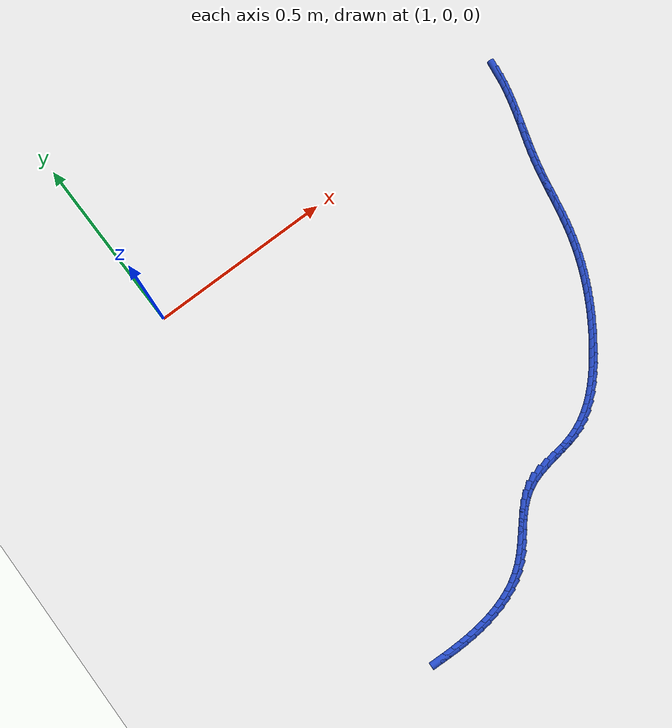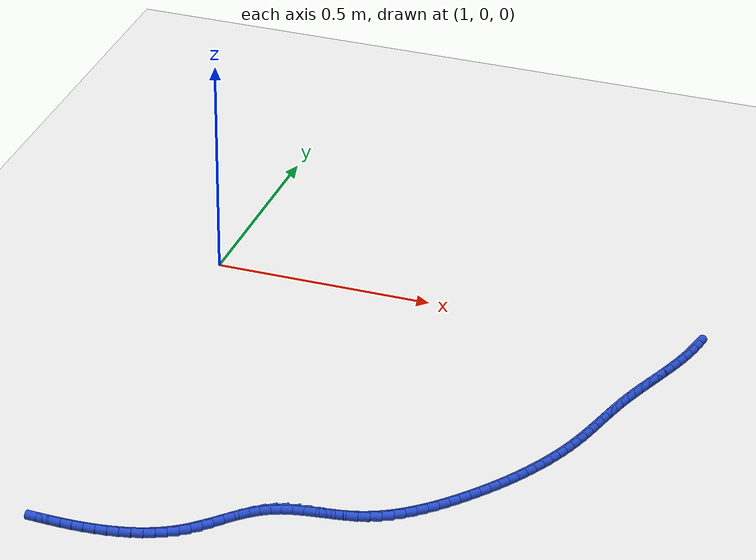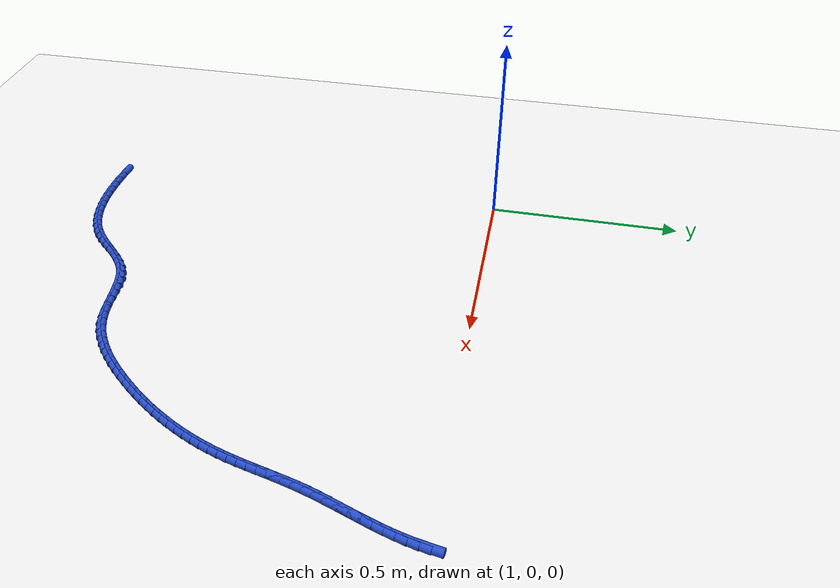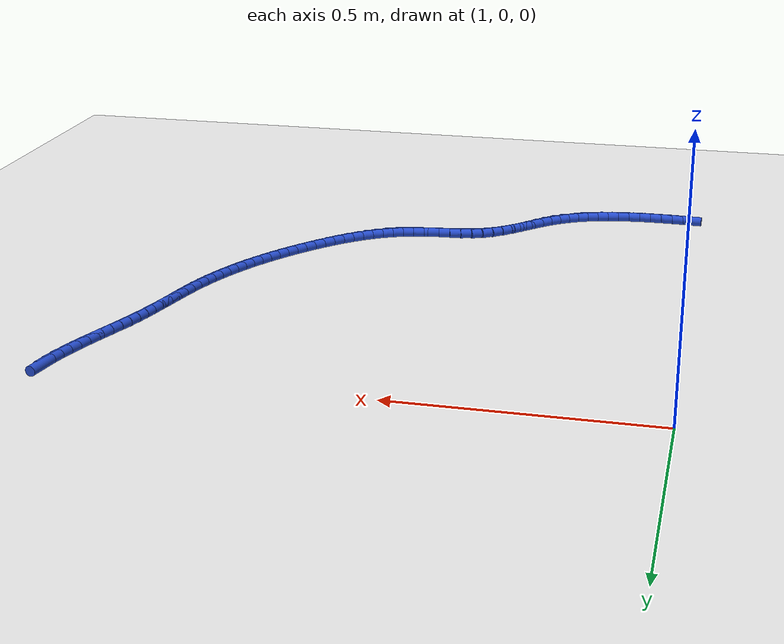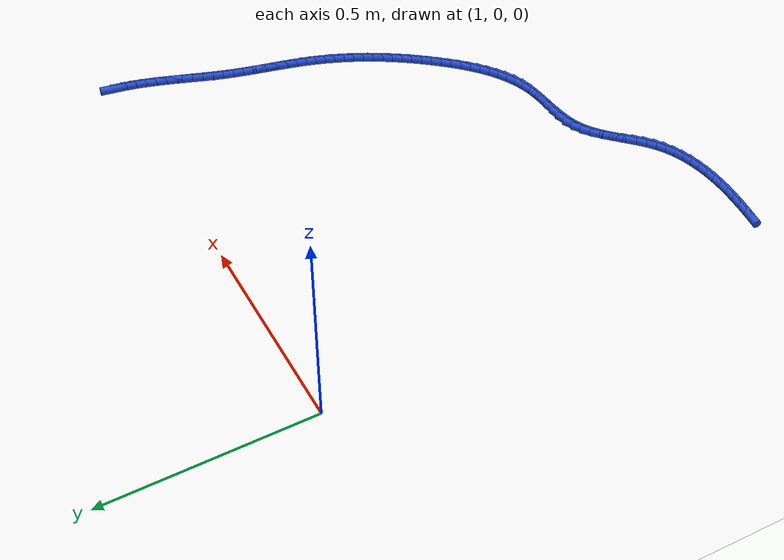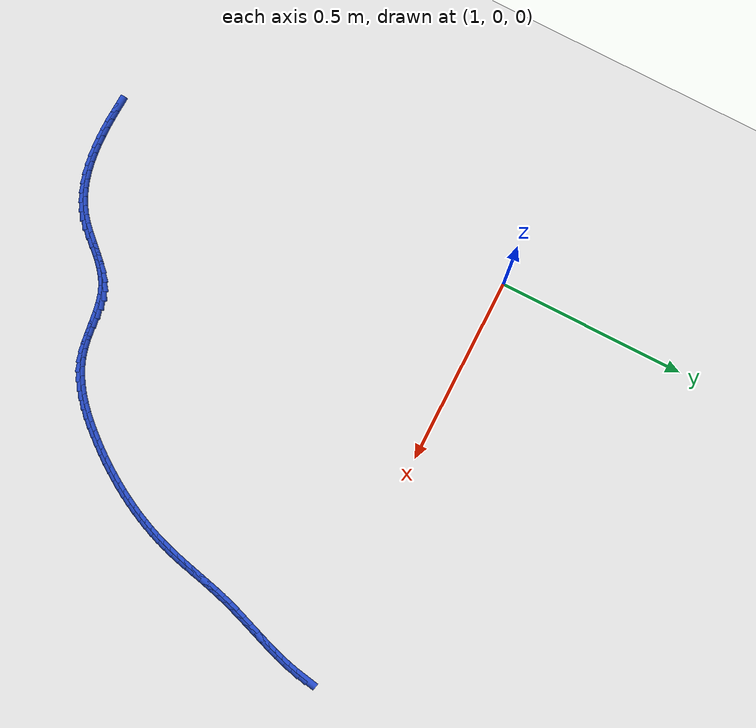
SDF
<sdf version="1.6">
 <world name="default">
  <model name="ground_plane">
   <static>1</static>
   <link name="link">
    <collision name="collision">
     <geometry><plane><normal>0 0 1</normal><size>100 100</size></plane></geometry>
     <surface><friction><ode><mu>100</mu><mu2>50</mu2></ode></friction></surface>
    </collision>
    <visual name="visual">
     <cast_shadows>0</cast_shadows>
     <geometry><plane><normal>0 0 1</normal><size>100 100</size></plane></geometry>
     <material>
      <script><uri>file://media/materials/scripts/gazebo.material</uri><name>Gazebo/WhiteGlow</name></script>
     </material>
    </visual>
   </link>
  </model>
  <model name="line">
   <link name="link_140">
    <pose>2.1119789905727155 -0.00016932685512074507 0.01 0 1.57 1.3908971001475434</pose>
    <collision name="collision">
     <geometry><cylinder><radius>0.01</radius><length>0.08</length></cylinder></geometry>
    </collision>
    <visual name="visual">
     <material>
      <script><name>Gazebo/Blue</name><uri>file://media/materials/scripts/gazebo.material</uri></script>
     </material>
     <geometry><cylinder><radius>0.01</radius><length>0.08</length></cylinder></geometry>
    </visual>
   </link>
   <link name="link_141">
    <pose>2.1077597652340416 -0.023369038611728836 0.01 0 1.57 1.3421493708460157</pose>
    <collision name="collision">
     <geometry><cylinder><radius>0.01</radius><length>0.08</length></cylinder></geometry>
    </collision>
    <visual name="visual">
     <material>
      <script><name>Gazebo/Blue</name><uri>file://media/materials/scripts/gazebo.material</uri></script>
     </material>
     <geometry><cylinder><radius>0.01</radius><length>0.08</length></cylinder></geometry>
    </visual>
   </link>
   <link name="link_142">
    <pose>2.102318090108886 -0.04675230962630946 0.01 0 1.57 1.302776358521491</pose>
    <collision name="collision">
     <geometry><cylinder><radius>0.01</radius><length>0.08</length></cylinder></geometry>
    </collision>
    <visual name="visual">
     <material>
      <script><name>Gazebo/Blue</name><uri>file://media/materials/scripts/gazebo.material</uri></script>
     </material>
     <geometry><cylinder><radius>0.01</radius><length>0.08</length></cylinder></geometry>
    </visual>
   </link>
   <link name="link_143">
    <pose>2.0958546328938366 -0.07028766085025737 0.01 0 1.57 1.2720727766157587</pose>
    <collision name="collision">
     <geometry><cylinder><radius>0.01</radius><length>0.08</length></cylinder></geometry>
    </collision>
    <visual name="visual">
     <material>
      <script><name>Gazebo/Blue</name><uri>file://media/materials/scripts/gazebo.material</uri></script>
     </material>
     <geometry><cylinder><radius>0.01</radius><length>0.08</length></cylinder></geometry>
    </visual>
   </link>
   <link name="link_144">
    <pose>2.0885700612854805 -0.09394361323496742 0.01 0 1.57 1.2494250937084275</pose>
    <collision name="collision">
     <geometry><cylinder><radius>0.01</radius><length>0.08</length></cylinder></geometry>
    </collision>
    <visual name="visual">
     <material>
      <script><name>Gazebo/Blue</name><uri>file://media/materials/scripts/gazebo.material</uri></script>
     </material>
     <geometry><cylinder><radius>0.01</radius><length>0.08</length></cylinder></geometry>
    </visual>
   </link>
   <link name="link_145">
    <pose>2.0806650429804066 -0.11768868773183441 0.01 0 1.57 1.2343518468855021</pose>
    <collision name="collision">
     <geometry><cylinder><radius>0.01</radius><length>0.08</length></cylinder></geometry>
    </collision>
    <visual name="visual">
     <material>
      <script><name>Gazebo/Blue</name><uri>file://media/materials/scripts/gazebo.material</uri></script>
     </material>
     <geometry><cylinder><radius>0.01</radius><length>0.08</length></cylinder></geometry>
    </visual>
   </link>
   <link name="link_146">
    <pose>2.0723402456752016 -0.14149140529225393 0.01 0 1.57 1.22652263205509</pose>
    <collision name="collision">
     <geometry><cylinder><radius>0.01</radius><length>0.08</length></cylinder></geometry>
    </collision>
    <visual name="visual">
     <material>
      <script><name>Gazebo/Blue</name><uri>file://media/materials/scripts/gazebo.material</uri></script>
     </material>
     <geometry><cylinder><radius>0.01</radius><length>0.08</length></cylinder></geometry>
    </visual>
   </link>
   <link name="link_147">
    <pose>2.063796337066454 -0.1653202868676192 0.01 0 1.57 1.2257659722225072</pose>
    <collision name="collision">
     <geometry><cylinder><radius>0.01</radius><length>0.08</length></cylinder></geometry>
    </collision>
    <visual name="visual">
     <material>
      <script><name>Gazebo/Blue</name><uri>file://media/materials/scripts/gazebo.material</uri></script>
     </material>
     <geometry><cylinder><radius>0.01</radius><length>0.08</length></cylinder></geometry>
    </visual>
   </link>
   <link name="link_148">
    <pose>2.055233984850752 -0.18914385340932582 0.01 0 1.57 1.2320721787025977</pose>
    <collision name="collision">
     <geometry><cylinder><radius>0.01</radius><length>0.08</length></cylinder></geometry>
    </collision>
    <visual name="visual">
     <material>
      <script><name>Gazebo/Blue</name><uri>file://media/materials/scripts/gazebo.material</uri></script>
     </material>
     <geometry><cylinder><radius>0.01</radius><length>0.08</length></cylinder></geometry>
    </visual>
   </link>
   <link name="link_149">
    <pose>2.046853856724683 -0.2129306258687687 0.01 0 1.57 1.2455941088734253</pose>
    <collision name="collision">
     <geometry><cylinder><radius>0.01</radius><length>0.08</length></cylinder></geometry>
    </collision>
    <visual name="visual">
     <material>
      <script><name>Gazebo/Blue</name><uri>file://media/materials/scripts/gazebo.material</uri></script>
     </material>
     <geometry><cylinder><radius>0.01</radius><length>0.08</length></cylinder></geometry>
    </visual>
   </link>
   <link name="link_150">
    <pose>2.0388566203848355 -0.2366491251973426 0.01 0 1.57 1.2666315027740807</pose>
    <collision name="collision">
     <geometry><cylinder><radius>0.01</radius><length>0.08</length></cylinder></geometry>
    </collision>
    <visual name="visual">
     <material>
      <script><name>Gazebo/Blue</name><uri>file://media/materials/scripts/gazebo.material</uri></script>
     </material>
     <geometry><cylinder><radius>0.01</radius><length>0.08</length></cylinder></geometry>
    </visual>
   </link>
   <link name="link_151">
    <pose>2.031442557309021 -0.2602678981682472 0.01 0 1.57 1.2917681304477877</pose>
    <collision name="collision">
     <geometry><cylinder><radius>0.01</radius><length>0.08</length></cylinder></geometry>
    </collision>
    <visual name="visual">
     <material>
      <script><name>Gazebo/Blue</name><uri>file://media/materials/scripts/gazebo.material</uri></script>
     </material>
     <geometry><cylinder><radius>0.01</radius><length>0.08</length></cylinder></geometry>
    </visual>
   </link>
   <link name="link_152">
    <pose>2.0247113775892513 -0.28376221555380204 0.01 0 1.57 1.312057740039612</pose>
    <collision name="collision">
     <geometry><cylinder><radius>0.01</radius><length>0.08</length></cylinder></geometry>
    </collision>
    <visual name="visual">
     <material>
      <script><name>Gazebo/Blue</name><uri>file://media/materials/scripts/gazebo.material</uri></script>
     </material>
     <geometry><cylinder><radius>0.01</radius><length>0.08</length></cylinder></geometry>
    </visual>
   </link>
   <link name="link_153">
    <pose>2.018528443809461 -0.3071230161259819 0.01 0 1.57 1.3259179890098105</pose>
    <collision name="collision">
     <geometry><cylinder><radius>0.01</radius><length>0.08</length></cylinder></geometry>
    </collision>
    <visual name="visual">
     <material>
      <script><name>Gazebo/Blue</name><uri>file://media/materials/scripts/gazebo.material</uri></script>
     </material>
     <geometry><cylinder><radius>0.01</radius><length>0.08</length></cylinder></geometry>
    </visual>
   </link>
   <link name="link_154">
    <pose>2.0127258065204567 -0.33034346583181357 0.01 0 1.57 1.3330925601519714</pose>
    <collision name="collision">
     <geometry><cylinder><radius>0.01</radius><length>0.08</length></cylinder></geometry>
    </collision>
    <visual name="visual">
     <material>
      <script><name>Gazebo/Blue</name><uri>file://media/materials/scripts/gazebo.material</uri></script>
     </material>
     <geometry><cylinder><radius>0.01</radius><length>0.08</length></cylinder></geometry>
    </visual>
   </link>
   <link name="link_155">
    <pose>2.007135516273047 -0.3534167306183246 0.01 0 1.57 1.3333844132287938</pose>
    <collision name="collision">
     <geometry><cylinder><radius>0.01</radius><length>0.08</length></cylinder></geometry>
    </collision>
    <visual name="visual">
     <material>
      <script><name>Gazebo/Blue</name><uri>file://media/materials/scripts/gazebo.material</uri></script>
     </material>
     <geometry><cylinder><radius>0.01</radius><length>0.08</length></cylinder></geometry>
    </visual>
   </link>
   <link name="link_156">
    <pose>2.00158962361804 -0.3763359764325405 0.01 0 1.57 1.3266512956134764</pose>
    <collision name="collision">
     <geometry><cylinder><radius>0.01</radius><length>0.08</length></cylinder></geometry>
    </collision>
    <visual name="visual">
     <material>
      <script><name>Gazebo/Blue</name><uri>file://media/materials/scripts/gazebo.material</uri></script>
     </material>
     <geometry><cylinder><radius>0.01</radius><length>0.08</length></cylinder></geometry>
    </visual>
   </link>
   <link name="link_157">
    <pose>1.9959201791062418 -0.3990943692214887 0.01 0 1.57 1.3128093802815755</pose>
    <collision name="collision">
     <geometry><cylinder><radius>0.01</radius><length>0.08</length></cylinder></geometry>
    </collision>
    <visual name="visual">
     <material>
      <script><name>Gazebo/Blue</name><uri>file://media/materials/scripts/gazebo.material</uri></script>
     </material>
     <geometry><cylinder><radius>0.01</radius><length>0.08</length></cylinder></geometry>
    </visual>
   </link>
   <link name="link_158">
    <pose>1.9899592332884628 -0.42168507493219626 0.01 0 1.57 1.291846274981923</pose>
    <collision name="collision">
     <geometry><cylinder><radius>0.01</radius><length>0.08</length></cylinder></geometry>
    </collision>
    <visual name="visual">
     <material>
      <script><name>Gazebo/Blue</name><uri>file://media/materials/scripts/gazebo.material</uri></script>
     </material>
     <geometry><cylinder><radius>0.01</radius><length>0.08</length></cylinder></geometry>
    </visual>
   </link>
   <link name="link_159">
    <pose>1.9835388367155091 -0.4441012595116898 0.01 0 1.57 1.2638950569775589</pose>
    <collision name="collision">
     <geometry><cylinder><radius>0.01</radius><length>0.08</length></cylinder></geometry>
    </collision>
    <visual name="visual">
     <material>
      <script><name>Gazebo/Blue</name><uri>file://media/materials/scripts/gazebo.material</uri></script>
     </material>
     <geometry><cylinder><radius>0.01</radius><length>0.08</length></cylinder></geometry>
    </visual>
   </link>
   <link name="link_160">
    <pose>1.9764923103053098 -0.46633606812106954 0.01 0 1.57 1.2319318706358269</pose>
    <collision name="collision">
     <geometry><cylinder><radius>0.01</radius><length>0.08</length></cylinder></geometry>
    </collision>
    <visual name="visual">
     <material>
      <script><name>Gazebo/Blue</name><uri>file://media/materials/scripts/gazebo.material</uri></script>
     </material>
     <geometry><cylinder><radius>0.01</radius><length>0.08</length></cylinder></geometry>
    </visual>
   </link>
   <link name="link_161">
    <pose>1.9687221779599413 -0.48838151361240284 0.01 0 1.57 1.2002240146071206</pose>
    <collision name="collision">
     <geometry><cylinder><radius>0.01</radius><length>0.08</length></cylinder></geometry>
    </collision>
    <visual name="visual">
     <material>
      <script><name>Gazebo/Blue</name><uri>file://media/materials/scripts/gazebo.material</uri></script>
     </material>
     <geometry><cylinder><radius>0.01</radius><length>0.08</length></cylinder></geometry>
    </visual>
   </link>
   <link name="link_162">
    <pose>1.9602343758756107 -0.5102279167911475 0.01 0 1.57 1.169116741217761</pose>
    <collision name="collision">
     <geometry><cylinder><radius>0.01</radius><length>0.08</length></cylinder></geometry>
    </collision>
    <visual name="visual">
     <material>
      <script><name>Gazebo/Blue</name><uri>file://media/materials/scripts/gazebo.material</uri></script>
     </material>
     <geometry><cylinder><radius>0.01</radius><length>0.08</length></cylinder></geometry>
    </visual>
   </link>
   <link name="link_163">
    <pose>1.9510433004331285 -0.531865460036022 0.01 0 1.57 1.1386071097745334</pose>
    <collision name="collision">
     <geometry><cylinder><radius>0.01</radius><length>0.08</length></cylinder></geometry>
    </collision>
    <visual name="visual">
     <material>
      <script><name>Gazebo/Blue</name><uri>file://media/materials/scripts/gazebo.material</uri></script>
     </material>
     <geometry><cylinder><radius>0.01</radius><length>0.08</length></cylinder></geometry>
    </visual>
   </link>
   <link name="link_164">
    <pose>1.9411633480133057 -0.5532843257257455 0.01 0 1.57 1.1086884202255078</pose>
    <collision name="collision">
     <geometry><cylinder><radius>0.01</radius><length>0.08</length></cylinder></geometry>
    </collision>
    <visual name="visual">
     <material>
      <script><name>Gazebo/Blue</name><uri>file://media/materials/scripts/gazebo.material</uri></script>
     </material>
     <geometry><cylinder><radius>0.01</radius><length>0.08</length></cylinder></geometry>
    </visual>
   </link>
   <link name="link_165">
    <pose>1.9306089149969552 -0.574474696239035 0.01 0 1.57 1.0793506322932012</pose>
    <collision name="collision">
     <geometry><cylinder><radius>0.01</radius><length>0.08</length></cylinder></geometry>
    </collision>
    <visual name="visual">
     <material>
      <script><name>Gazebo/Blue</name><uri>file://media/materials/scripts/gazebo.material</uri></script>
     </material>
     <geometry><cylinder><radius>0.01</radius><length>0.08</length></cylinder></geometry>
    </visual>
   </link>
   <link name="link_166">
    <pose>1.919394397764887 -0.5954267539546099 0.01 0 1.57 1.0505807733946966</pose>
    <collision name="collision">
     <geometry><cylinder><radius>0.01</radius><length>0.08</length></cylinder></geometry>
    </collision>
    <visual name="visual">
     <material>
      <script><name>Gazebo/Blue</name><uri>file://media/materials/scripts/gazebo.material</uri></script>
     </material>
     <geometry><cylinder><radius>0.01</radius><length>0.08</length></cylinder></geometry>
    </visual>
   </link>
   <link name="link_167">
    <pose>1.9075341926979126 -0.6161306812511883 0.01 0 1.57 1.0223633281270752</pose>
    <collision name="collision">
     <geometry><cylinder><radius>0.01</radius><length>0.08</length></cylinder></geometry>
    </collision>
    <visual name="visual">
     <material>
      <script><name>Gazebo/Blue</name><uri>file://media/materials/scripts/gazebo.material</uri></script>
     </material>
     <geometry><cylinder><radius>0.01</radius><length>0.08</length></cylinder></geometry>
    </visual>
   </link>
   <link name="link_168">
    <pose>1.8950426961768432 -0.636576660507489 0.01 0 1.57 0.994680604032236</pose>
    <collision name="collision">
     <geometry><cylinder><radius>0.01</radius><length>0.08</length></cylinder></geometry>
    </collision>
    <visual name="visual">
     <material>
      <script><name>Gazebo/Blue</name><uri>file://media/materials/scripts/gazebo.material</uri></script>
     </material>
     <geometry><cylinder><radius>0.01</radius><length>0.08</length></cylinder></geometry>
    </visual>
   </link>
   <link name="link_169">
    <pose>1.8819343045824901 -0.6567548741022301 0.01 0 1.57 0.9675130700720237</pose>
    <collision name="collision">
     <geometry><cylinder><radius>0.01</radius><length>0.08</length></cylinder></geometry>
    </collision>
    <visual name="visual">
     <material>
      <script><name>Gazebo/Blue</name><uri>file://media/materials/scripts/gazebo.material</uri></script>
     </material>
     <geometry><cylinder><radius>0.01</radius><length>0.08</length></cylinder></geometry>
    </visual>
   </link>
   <link name="link_170">
    <pose>1.8682234142956644 -0.6766555044141305 0.01 0 1.57 0.9408396657154054</pose>
    <collision name="collision">
     <geometry><cylinder><radius>0.01</radius><length>0.08</length></cylinder></geometry>
    </collision>
    <visual name="visual">
     <material>
      <script><name>Gazebo/Blue</name><uri>file://media/materials/scripts/gazebo.material</uri></script>
     </material>
     <geometry><cylinder><radius>0.01</radius><length>0.08</length></cylinder></geometry>
    </visual>
   </link>
   <link name="link_171">
    <pose>1.8539244216971773 -0.6962687338219082 0.01 0 1.57 0.914638079757792</pose>
    <collision name="collision">
     <geometry><cylinder><radius>0.01</radius><length>0.08</length></cylinder></geometry>
    </collision>
    <visual name="visual">
     <material>
      <script><name>Gazebo/Blue</name><uri>file://media/materials/scripts/gazebo.material</uri></script>
     </material>
     <geometry><cylinder><radius>0.01</radius><length>0.08</length></cylinder></geometry>
    </visual>
   </link>
   <link name="link_172">
    <pose>1.8390517231678407 -0.7155847447042822 0.01 0 1.57 0.8888849989666495</pose>
    <collision name="collision">
     <geometry><cylinder><radius>0.01</radius><length>0.08</length></cylinder></geometry>
    </collision>
    <visual name="visual">
     <material>
      <script><name>Gazebo/Blue</name><uri>file://media/materials/scripts/gazebo.material</uri></script>
     </material>
     <geometry><cylinder><radius>0.01</radius><length>0.08</length></cylinder></geometry>
    </visual>
   </link>
   <link name="link_173">
    <pose>1.823619715088465 -0.7345937194399712 0.01 0 1.57 0.8627028787667755</pose>
    <collision name="collision">
     <geometry><cylinder><radius>0.01</radius><length>0.08</length></cylinder></geometry>
    </collision>
    <visual name="visual">
     <material>
      <script><name>Gazebo/Blue</name><uri>file://media/materials/scripts/gazebo.material</uri></script>
     </material>
     <geometry><cylinder><radius>0.01</radius><length>0.08</length></cylinder></geometry>
    </visual>
   </link>
   <link name="link_174">
    <pose>1.8076357050602063 -0.7532618524436119 0.01 0 1.57 0.8313106113284164</pose>
    <collision name="collision">
     <geometry><cylinder><radius>0.01</radius><length>0.08</length></cylinder></geometry>
    </collision>
    <visual name="visual">
     <material>
      <script><name>Gazebo/Blue</name><uri>file://media/materials/scripts/gazebo.material</uri></script>
     </material>
     <geometry><cylinder><radius>0.01</radius><length>0.08</length></cylinder></geometry>
    </visual>
   </link>
   <link name="link_175">
    <pose>1.791068425725684 -0.7714248030074876 0.01 0 1.57 0.7927402976531198</pose>
    <collision name="collision">
     <geometry><cylinder><radius>0.01</radius><length>0.08</length></cylinder></geometry>
    </collision>
    <visual name="visual">
     <material>
      <script><name>Gazebo/Blue</name><uri>file://media/materials/scripts/gazebo.material</uri></script>
     </material>
     <geometry><cylinder><radius>0.01</radius><length>0.08</length></cylinder></geometry>
    </visual>
   </link>
   <link name="link_176">
    <pose>1.7738735517966262 -0.7888740432446416 0.01 0 1.57 0.7464620384514175</pose>
    <collision name="collision">
     <geometry><cylinder><radius>0.01</radius><length>0.08</length></cylinder></geometry>
    </collision>
    <visual name="visual">
     <material>
      <script><name>Gazebo/Blue</name><uri>file://media/materials/scripts/gazebo.material</uri></script>
     </material>
     <geometry><cylinder><radius>0.01</radius><length>0.08</length></cylinder></geometry>
    </visual>
   </link>
   <link name="link_177">
    <pose>1.7560067476008392 -0.8054010101296202 0.01 0 1.57 0.6918808440474382</pose>
    <collision name="collision">
     <geometry><cylinder><radius>0.01</radius><length>0.08</length></cylinder></geometry>
    </collision>
    <visual name="visual">
     <material>
      <script><name>Gazebo/Blue</name><uri>file://media/materials/scripts/gazebo.material</uri></script>
     </material>
     <geometry><cylinder><radius>0.01</radius><length>0.08</length></cylinder></geometry>
    </visual>
   </link>
   <link name="link_178">
    <pose>1.737423677466133 -0.8207971406369708 0.01 0 1.57 0.6284109278070237</pose>
    <collision name="collision">
     <geometry><cylinder><radius>0.01</radius><length>0.08</length></cylinder></geometry>
    </collision>
    <visual name="visual">
     <material>
      <script><name>Gazebo/Blue</name><uri>file://media/materials/scripts/gazebo.material</uri></script>
     </material>
     <geometry><cylinder><radius>0.01</radius><length>0.08</length></cylinder></geometry>
    </visual>
   </link>
   <link name="link_179">
    <pose>1.718080005720315 -0.8348538717412401 0.01 0 1.57 0.5555917368185088</pose>
    <collision name="collision">
     <geometry><cylinder><radius>0.01</radius><length>0.08</length></cylinder></geometry>
    </collision>
    <visual name="visual">
     <material>
      <script><name>Gazebo/Blue</name><uri>file://media/materials/scripts/gazebo.material</uri></script>
     </material>
     <geometry><cylinder><radius>0.01</radius><length>0.08</length></cylinder></geometry>
    </visual>
   </link>
   <link name="link_180">
    <pose>1.6979313966911935 -0.8473626404169753 0.01 0 1.57 0.47325155254451673</pose>
    <collision name="collision">
     <geometry><cylinder><radius>0.01</radius><length>0.08</length></cylinder></geometry>
    </collision>
    <visual name="visual">
     <material>
      <script><name>Gazebo/Blue</name><uri>file://media/materials/scripts/gazebo.material</uri></script>
     </material>
     <geometry><cylinder><radius>0.01</radius><length>0.08</length></cylinder></geometry>
    </visual>
   </link>
   <link name="link_181">
    <pose>1.6769335147065763 -0.8581148836387233 0.01 0 1.57 0.38170916616440764</pose>
    <collision name="collision">
     <geometry><cylinder><radius>0.01</radius><length>0.08</length></cylinder></geometry>
    </collision>
    <visual name="visual">
     <material>
      <script><name>Gazebo/Blue</name><uri>file://media/materials/scripts/gazebo.material</uri></script>
     </material>
     <geometry><cylinder><radius>0.01</radius><length>0.08</length></cylinder></geometry>
    </visual>
   </link>
   <link name="link_182">
    <pose>1.6550420240942736 -0.8669020383810312 0.01 0 1.57 0.2829472894582884</pose>
    <collision name="collision">
     <geometry><cylinder><radius>0.01</radius><length>0.08</length></cylinder></geometry>
    </collision>
    <visual name="visual">
     <material>
      <script><name>Gazebo/Blue</name><uri>file://media/materials/scripts/gazebo.material</uri></script>
     </material>
     <geometry><cylinder><radius>0.01</radius><length>0.08</length></cylinder></geometry>
    </visual>
   </link>
   <link name="link_183">
    <pose>1.632221457738809 -0.8735370732088279 0.01 0 1.57 0.19885428317773274</pose>
    <collision name="collision">
     <geometry><cylinder><radius>0.01</radius><length>0.08</length></cylinder></geometry>
    </collision>
    <visual name="visual">
     <material>
      <script><name>Gazebo/Blue</name><uri>file://media/materials/scripts/gazebo.material</uri></script>
     </material>
     <geometry><cylinder><radius>0.01</radius><length>0.08</length></cylinder></geometry>
    </visual>
   </link>
   <link name="link_184">
    <pose>1.608625455320084 -0.8782920810053023 0.01 0 1.57 0.14813729426240896</pose>
    <collision name="collision">
     <geometry><cylinder><radius>0.01</radius><length>0.08</length></cylinder></geometry>
    </collision>
    <visual name="visual">
     <material>
      <script><name>Gazebo/Blue</name><uri>file://media/materials/scripts/gazebo.material</uri></script>
     </material>
     <geometry><cylinder><radius>0.01</radius><length>0.08</length></cylinder></geometry>
    </visual>
   </link>
   <link name="link_185">
    <pose>1.5845888535030979 -0.8818790750810829 0.01 0 1.57 0.12972814299753962</pose>
    <collision name="collision">
     <geometry><cylinder><radius>0.01</radius><length>0.08</length></cylinder></geometry>
    </collision>
    <visual name="visual">
     <material>
      <script><name>Gazebo/Blue</name><uri>file://media/materials/scripts/gazebo.material</uri></script>
     </material>
     <geometry><cylinder><radius>0.01</radius><length>0.08</length></cylinder></geometry>
    </visual>
   </link>
   <link name="link_186">
    <pose>1.5604537746421077 -0.885027757360827 0.01 0 1.57 0.14300481832371117</pose>
    <collision name="collision">
     <geometry><cylinder><radius>0.01</radius><length>0.08</length></cylinder></geometry>
    </collision>
    <visual name="visual">
     <material>
      <script><name>Gazebo/Blue</name><uri>file://media/materials/scripts/gazebo.material</uri></script>
     </material>
     <geometry><cylinder><radius>0.01</radius><length>0.08</length></cylinder></geometry>
    </visual>
   </link>
   <link name="link_187">
    <pose>1.53656234109137 -0.8884678297691916 0.01 0 1.57 0.18913186036330754</pose>
    <collision name="collision">
     <geometry><cylinder><radius>0.01</radius><length>0.08</length></cylinder></geometry>
    </collision>
    <visual name="visual">
     <material>
      <script><name>Gazebo/Blue</name><uri>file://media/materials/scripts/gazebo.material</uri></script>
     </material>
     <geometry><cylinder><radius>0.01</radius><length>0.08</length></cylinder></geometry>
    </visual>
   </link>
   <link name="link_188">
    <pose>1.5132566752051413 -0.8929289942308343 0.01 0 1.57 0.2707771470578837</pose>
    <collision name="collision">
     <geometry><cylinder><radius>0.01</radius><length>0.08</length></cylinder></geometry>
    </collision>
    <visual name="visual">
     <material>
      <script><name>Gazebo/Blue</name><uri>file://media/materials/scripts/gazebo.material</uri></script>
     </material>
     <geometry><cylinder><radius>0.01</radius><length>0.08</length></cylinder></geometry>
    </visual>
   </link>
   <link name="link_189">
    <pose>1.4908788993376796 -0.8991409526704125 0.01 0 1.57 0.39064821759058</pose>
    <collision name="collision">
     <geometry><cylinder><radius>0.01</radius><length>0.08</length></cylinder></geometry>
    </collision>
    <visual name="visual">
     <material>
      <script><name>Gazebo/Blue</name><uri>file://media/materials/scripts/gazebo.material</uri></script>
     </material>
     <geometry><cylinder><radius>0.01</radius><length>0.08</length></cylinder></geometry>
    </visual>
   </link>
   <link name="link_190">
    <pose>1.4697711334260266 -0.9078334021531564 0.01 0 1.57 0.5358372875546935</pose>
    <collision name="collision">
     <geometry><cylinder><radius>0.01</radius><length>0.08</length></cylinder></geometry>
    </collision>
    <visual name="visual">
     <material>
      <script><name>Gazebo/Blue</name><uri>file://media/materials/scripts/gazebo.material</uri></script>
     </material>
     <geometry><cylinder><radius>0.01</radius><length>0.08</length></cylinder></geometry>
    </visual>
   </link>
   <link name="link_191">
    <pose>1.4501501514728703 -0.9194840515064325 0.01 0 1.57 0.6564052120937343</pose>
    <collision name="collision">
     <geometry><cylinder><radius>0.01</radius><length>0.08</length></cylinder></geometry>
    </collision>
    <visual name="visual">
     <material>
      <script><name>Gazebo/Blue</name><uri>file://media/materials/scripts/gazebo.material</uri></script>
     </material>
     <geometry><cylinder><radius>0.01</radius><length>0.08</length></cylinder></geometry>
    </visual>
   </link>
   <link name="link_192">
    <pose>1.4317710902344936 -0.9336425606595653 0.01 0 1.57 0.7410620500191435</pose>
    <collision name="collision">
     <geometry><cylinder><radius>0.01</radius><length>0.08</length></cylinder></geometry>
    </collision>
    <visual name="visual">
     <material>
      <script><name>Gazebo/Blue</name><uri>file://media/materials/scripts/gazebo.material</uri></script>
     </material>
     <geometry><cylinder><radius>0.01</radius><length>0.08</length></cylinder></geometry>
    </visual>
   </link>
   <link name="link_193">
    <pose>1.4142828375546572 -0.9496449928554062 0.01 0 1.57 0.7922499613839878</pose>
    <collision name="collision">
     <geometry><cylinder><radius>0.01</radius><length>0.08</length></cylinder></geometry>
    </collision>
    <visual name="visual">
     <material>
      <script><name>Gazebo/Blue</name><uri>file://media/materials/scripts/gazebo.material</uri></script>
     </material>
     <geometry><cylinder><radius>0.01</radius><length>0.08</length></cylinder></geometry>
    </visual>
   </link>
   <link name="link_194">
    <pose>1.3973342812771212 -0.9668274113368057 0.01 0 1.57 0.8126270231115555</pose>
    <collision name="collision">
     <geometry><cylinder><radius>0.01</radius><length>0.08</length></cylinder></geometry>
    </collision>
    <visual name="visual">
     <material>
      <script><name>Gazebo/Blue</name><uri>file://media/materials/scripts/gazebo.material</uri></script>
     </material>
     <geometry><cylinder><radius>0.01</radius><length>0.08</length></cylinder></geometry>
    </visual>
   </link>
   <link name="link_195">
    <pose>1.3805743092456464 -0.984525879346615 0.01 0 1.57 0.8036156056227463</pose>
    <collision name="collision">
     <geometry><cylinder><radius>0.01</radius><length>0.08</length></cylinder></geometry>
    </collision>
    <visual name="visual">
     <material>
      <script><name>Gazebo/Blue</name><uri>file://media/materials/scripts/gazebo.material</uri></script>
     </material>
     <geometry><cylinder><radius>0.01</radius><length>0.08</length></cylinder></geometry>
    </visual>
   </link>
   <link name="link_196">
    <pose>1.3636518093039929 -1.002076460127685 0.01 0 1.57 0.764994694725229</pose>
    <collision name="collision">
     <geometry><cylinder><radius>0.01</radius><length>0.08</length></cylinder></geometry>
    </collision>
    <visual name="visual">
     <material>
      <script><name>Gazebo/Blue</name><uri>file://media/materials/scripts/gazebo.material</uri></script>
     </material>
     <geometry><cylinder><radius>0.01</radius><length>0.08</length></cylinder></geometry>
    </visual>
   </link>
   <link name="link_197">
    <pose>1.3462156692959226 -1.0188152169228675 0.01 0 1.57 0.6951332661241532</pose>
    <collision name="collision">
     <geometry><cylinder><radius>0.01</radius><length>0.08</length></cylinder></geometry>
    </collision>
    <visual name="visual">
     <material>
      <script><name>Gazebo/Blue</name><uri>file://media/materials/scripts/gazebo.material</uri></script>
     </material>
     <geometry><cylinder><radius>0.01</radius><length>0.08</length></cylinder></geometry>
    </visual>
   </link>
   <link name="link_198">
    <pose>1.3279147770981437 -1.0340782130311732 0.01 0 1.57 0.598711895242004</pose>
    <collision name="collision">
     <geometry><cylinder><radius>0.01</radius><length>0.08</length></cylinder></geometry>
    </collision>
    <visual name="visual">
     <material>
      <script><name>Gazebo/Blue</name><uri>file://media/materials/scripts/gazebo.material</uri></script>
     </material>
     <geometry><cylinder><radius>0.01</radius><length>0.08</length></cylinder></geometry>
    </visual>
   </link>
   <link name="link_199">
    <pose>1.308478447931794 -1.0473385996030873 0.01 0 1.57 0.501974100344322</pose>
    <collision name="collision">
     <geometry><cylinder><radius>0.01</radius><length>0.08</length></cylinder></geometry>
    </collision>
    <visual name="visual">
     <material>
      <script><name>Gazebo/Blue</name><uri>file://media/materials/scripts/gazebo.material</uri></script>
     </material>
     <geometry><cylinder><radius>0.01</radius><length>0.08</length></cylinder></geometry>
    </visual>
   </link>
   <link name="link_200">
    <pose>1.287950565742913 -1.0586057080017204 0.01 0 1.57 0.4127449648606951</pose>
    <collision name="collision">
     <geometry><cylinder><radius>0.01</radius><length>0.08</length></cylinder></geometry>
    </collision>
    <visual name="visual">
     <material>
      <script><name>Gazebo/Blue</name><uri>file://media/materials/scripts/gazebo.material</uri></script>
     </material>
     <geometry><cylinder><radius>0.01</radius><length>0.08</length></cylinder></geometry>
    </visual>
   </link>
   <link name="link_201">
    <pose>1.2664519109448407 -1.0680199390860519 0.01 0 1.57 0.3318724858809223</pose>
    <collision name="collision">
     <geometry><cylinder><radius>0.01</radius><length>0.08</length></cylinder></geometry>
    </collision>
    <visual name="visual">
     <material>
      <script><name>Gazebo/Blue</name><uri>file://media/materials/scripts/gazebo.material</uri></script>
     </material>
     <geometry><cylinder><radius>0.01</radius><length>0.08</length></cylinder></geometry>
    </visual>
   </link>
   <link name="link_202">
    <pose>1.2441032639509177 -1.0757216937150613 0.01 0 1.57 0.25961436170050806</pose>
    <collision name="collision">
     <geometry><cylinder><radius>0.01</radius><length>0.08</length></cylinder></geometry>
    </collision>
    <visual name="visual">
     <material>
      <script><name>Gazebo/Blue</name><uri>file://media/materials/scripts/gazebo.material</uri></script>
     </material>
     <geometry><cylinder><radius>0.01</radius><length>0.08</length></cylinder></geometry>
    </visual>
   </link>
   <link name="link_203">
    <pose>1.2210254051744847 -1.0818513727477275 0.01 0 1.57 0.19580155861905058</pose>
    <collision name="collision">
     <geometry><cylinder><radius>0.01</radius><length>0.08</length></cylinder></geometry>
    </collision>
    <visual name="visual">
     <material>
      <script><name>Gazebo/Blue</name><uri>file://media/materials/scripts/gazebo.material</uri></script>
     </material>
     <geometry><cylinder><radius>0.01</radius><length>0.08</length></cylinder></geometry>
    </visual>
   </link>
   <link name="link_204">
    <pose>1.1973391150288826 -1.0865493770430303 0.01 0 1.57 0.1400037651995342</pose>
    <collision name="collision">
     <geometry><cylinder><radius>0.01</radius><length>0.08</length></cylinder></geometry>
    </collision>
    <visual name="visual">
     <material>
      <script><name>Gazebo/Blue</name><uri>file://media/materials/scripts/gazebo.material</uri></script>
     </material>
     <geometry><cylinder><radius>0.01</radius><length>0.08</length></cylinder></geometry>
    </visual>
   </link>
   <link name="link_205">
    <pose>1.1731651739274516 -1.0899561074599489 0.01 0 1.57 0.09166508494584394</pose>
    <collision name="collision">
     <geometry><cylinder><radius>0.01</radius><length>0.08</length></cylinder></geometry>
    </collision>
    <visual name="visual">
     <material>
      <script><name>Gazebo/Blue</name><uri>file://media/materials/scripts/gazebo.material</uri></script>
     </material>
     <geometry><cylinder><radius>0.01</radius><length>0.08</length></cylinder></geometry>
    </visual>
   </link>
   <link name="link_206">
    <pose>1.1486243622835324 -1.0922119648574622 0.01 0 1.57 0.050201468149065946</pose>
    <collision name="collision">
     <geometry><cylinder><radius>0.01</radius><length>0.08</length></cylinder></geometry>
    </collision>
    <visual name="visual">
     <material>
      <script><name>Gazebo/Blue</name><uri>file://media/materials/scripts/gazebo.material</uri></script>
     </material>
     <geometry><cylinder><radius>0.01</radius><length>0.08</length></cylinder></geometry>
    </visual>
   </link>
   <link name="link_207">
    <pose>1.1238374605104662 -1.09345735009455 0.01 0 1.57 0.01506432076139045</pose>
    <collision name="collision">
     <geometry><cylinder><radius>0.01</radius><length>0.08</length></cylinder></geometry>
    </collision>
    <visual name="visual">
     <material>
      <script><name>Gazebo/Blue</name><uri>file://media/materials/scripts/gazebo.material</uri></script>
     </material>
     <geometry><cylinder><radius>0.01</radius><length>0.08</length></cylinder></geometry>
    </visual>
   </link>
   <link name="link_208">
    <pose>1.0989252490215922 -1.093832664030191 0.01 0 1.57 -0.014220664838041738</pose>
    <collision name="collision">
     <geometry><cylinder><radius>0.01</radius><length>0.08</length></cylinder></geometry>
    </collision>
    <visual name="visual">
     <material>
      <script><name>Gazebo/Blue</name><uri>file://media/materials/scripts/gazebo.material</uri></script>
     </material>
     <geometry><cylinder><radius>0.01</radius><length>0.08</length></cylinder></geometry>
    </visual>
   </link>
   <link name="link_209">
    <pose>1.0740085082302526 -1.0934783075233647 0.01 0 1.57 -0.03803034271767667</pose>
    <collision name="collision">
     <geometry><cylinder><radius>0.01</radius><length>0.08</length></cylinder></geometry>
    </collision>
    <visual name="visual">
     <material>
      <script><name>Gazebo/Blue</name><uri>file://media/materials/scripts/gazebo.material</uri></script>
     </material>
     <geometry><cylinder><radius>0.01</radius><length>0.08</length></cylinder></geometry>
    </visual>
   </link>
   <link name="link_210">
    <pose>1.049208018549788 -1.0925346814330508 0.01 0 1.57 -0.05662907800551864</pose>
    <collision name="collision">
     <geometry><cylinder><radius>0.01</radius><length>0.08</length></cylinder></geometry>
    </collision>
    <visual name="visual">
     <material>
      <script><name>Gazebo/Blue</name><uri>file://media/materials/scripts/gazebo.material</uri></script>
     </material>
     <geometry><cylinder><radius>0.01</radius><length>0.08</length></cylinder></geometry>
    </visual>
   </link>
  </model>
 </world>
</sdf>
